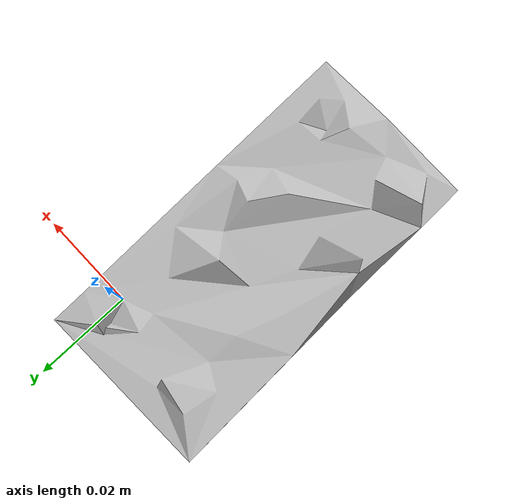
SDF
<?xml version='1.0'?>
<sdf version="1.4">
  <model name="073-c_lego_duplo">
    <static>false</static>
    <link name="link">
      <inertial>
        <pose>-0.013346337920762709 -0.022619022677330472 0.010998446326461827 1.1076915607802487 1.5634960408699072 -0.4373070451032122</pose>
        <mass>0.004664933674942218</mass>
        <inertia>
          <ixx>1.9442346362152097e-06</ixx>
          <ixy>-1.1328115087119062e-24</ixy>
          <ixz>-8.236286371266488e-23</ixz>
          <iyy>1.7611327638011508e-06</iyy>
          <iyz>1.966272685423068e-23</iyz>
          <izz>5.903077718717429e-07</izz>
        </inertia>
      </inertial>
      <collision name="collision">
        <geometry>
          <mesh>
            <!-- Use a downsampled mesh for collisions -->
            <uri>model:///073-c_lego_duplo/073-c_lego_duplo_250_collision.stl</uri>
	        </mesh>
        </geometry>
        <surface>
      </surface>
      </collision>
      <visual name="visual">
        <geometry>
          <mesh>
            <uri>model:///073-c_lego_duplo/textured.obj</uri>
	        </mesh>
        </geometry>
        <material>
          <script>
            <uri>model:///073-c_lego_duplo/073-c_lego_duplo.material</uri>
            <name>073-c_lego_duplo</name>
          </script>
        </material>
      </visual>
    </link>
  </model>
</sdf>
